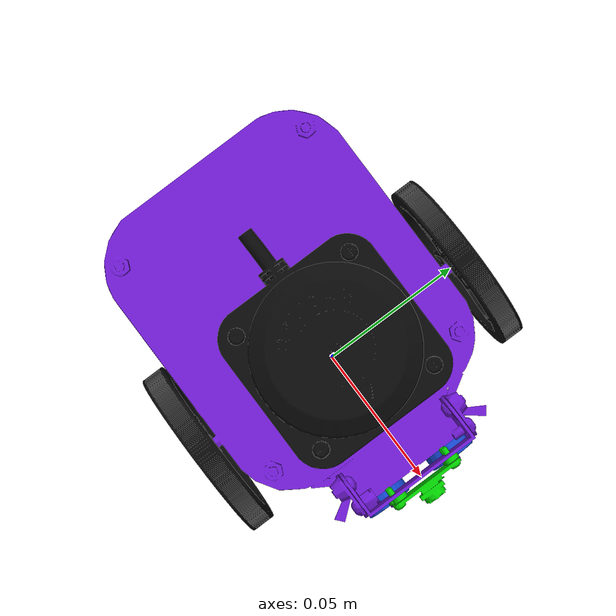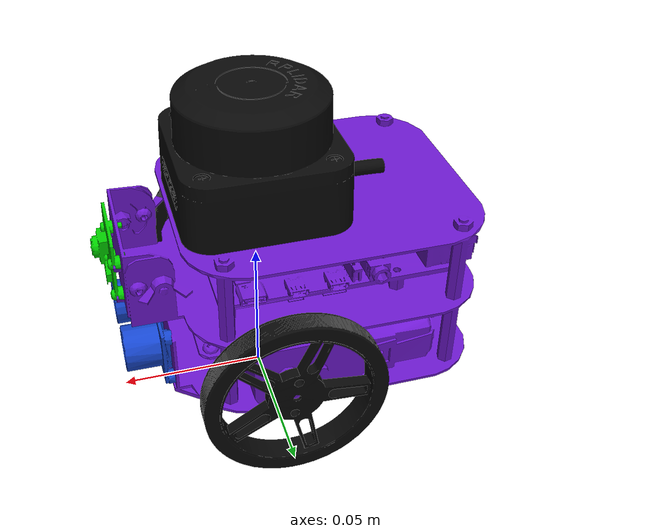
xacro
<?xml version="1.0"?>
<robot name="my_mobile" xmlns:xacro="http://www.ros.org/wiki/xacro">

    <xacro:property name="wheel_separation" value="0.1"/>
    <xacro:property name="wheel_diameter" value="0.06"/>

    <link name="base_footprint"/>

    <joint name="base_link_fixed_joint" type="fixed">
        <parent link="base_footprint"/>
        <child link="base_link"/>
        <origin xyz="0 0 ${wheel_diameter/2}" rpy="0 0 0"/>
    </joint>

	<link name="base_link">
		<visual>
            <origin xyz="0 0 0" rpy="0 0 0"/>
            <geometry>
                <mesh filename="file://$(find pinky_description)/meshes/visual/base_link.dae" scale="1 1 1"/>
            </geometry>
        </visual>
        <collision>
            <origin xyz="0 0 0" rpy="0 0 0"/>
            <geometry>
                <mesh filename="file://$(find pinky_description)/meshes/collision/base_link.stl" scale="1 1 1"/>
            </geometry>
        </collision>
        <inertial>
            <origin xyz="-0.02 0 0.028" rpy="0 0 0"/>
            <mass value="2.0"/>
            <inertia ixx="0.01" ixy="0" ixz="0" iyy="0.01" iyz="0" izz="0.01"/>
        </inertial>
	</link>

    <joint name="left_wheel_joint" type="continuous">
        <parent link="base_link"/>
        <child link="left_wheel"/>
        <origin xyz="0 ${wheel_separation/2} 0" rpy="-${pi/2} 0 0"/>
        <axis xyz="0 0 1"/>
    </joint>

    <link name="left_wheel">
        <visual>
            <origin xyz="0 0 0" rpy="0 0 0"/>
            <geometry>
                <mesh filename="file://$(find pinky_description)/meshes/visual/wheel.dae" scale="1 1 1"/>
            </geometry>
        </visual>
        <collision>
            <origin xyz="0 0 0" rpy="0 0 0"/>
            <geometry>
                <mesh filename="file://$(find pinky_description)/meshes/collision/wheel.stl" scale="1 1 1"/>
            </geometry>
        </collision>
        <inertial>
            <origin xyz="0 0 0" rpy="0 0 0"/>
            <mass value="0.2"/>
            <inertia ixx="0.1" ixy="0" ixz="0" iyy="0.1" iyz="0" izz="0.1"/>
        </inertial>
    </link>

    <joint name="right_wheel_joint" type="continuous">
        <parent link="base_link"/>
        <child link="right_wheel"/>
        <origin xyz="0 ${-1 * wheel_separation/2} 0" rpy="${pi/2} 0 0"/>
        <axis xyz="0 0 -1"/>
    </joint>

    <link name="right_wheel">
        <visual>
            <origin xyz="0 0 0" rpy="0 0 0"/>
            <geometry>
                <mesh filename="file://$(find pinky_description)/meshes/visual/wheel.dae" scale="1 1 1"/>
            </geometry>
        </visual>
        <collision>
            <origin xyz="0 0 0" rpy="0 0 0"/>
            <geometry>
                <mesh filename="file://$(find pinky_description)/meshes/collision/wheel.stl" scale="1 1 1"/>
            </geometry>
        </collision>
        <inertial>
            <origin xyz="0 0 0" rpy="0 0 0"/>
            <mass value="0.2"/>
            <inertia ixx="0.1" ixy="0" ixz="0" iyy="0.1" iyz="0" izz="0.1"/>
        </inertial>
    </link>

    <link name="ul_sensor_mount">
        <visual>
            <origin xyz="0 0 0" rpy="0 0 0"/>
            <geometry>
                <mesh filename="file://$(find pinky_description)/meshes/visual/ul_sensor.dae" scale="1 1 1"/>
            </geometry>
        </visual>
        <collision>
            <origin xyz="0 0 0" rpy="0 0 0"/>
            <geometry>
                <mesh filename="file://$(find pinky_description)/meshes/collision/ul_sensor.stl" scale="1 1 1"/>
            </geometry>
        </collision>
        <inertial>
            <origin xyz="0.005 0 0.013" rpy="0 0 0"/>
            <mass value="0.050000"/>
            <inertia ixx="0.000005" ixy="0" ixz="-0.000001" iyy="0.000004" iyz="0" izz="0.000003"/>
        </inertial>
    </link>

    <joint name="ul_sensor_mount_fixed_joint" type="fixed">
        <parent link="base_link"/>
        <child link="ul_sensor_mount"/>
        <origin xyz="0.038 -0.002 -0.0035" rpy="0 0 0"/>
    </joint>

    <link name="ul_sensor_link"/>

    <joint name="ul_sensor_link_fixed_joint" type="fixed">
        <parent link="ul_sensor_mount"/>
        <child link="ul_sensor_link"/>
        <origin xyz="0.01 0 0" rpy="0 0 0"/>
    </joint>

    <link name="front_camera_mount">
        <visual>
            <origin xyz="0 0 0" rpy="0 0 0"/>
            <geometry>
                <mesh filename="file://$(find pinky_description)/meshes/visual/camera.dae" scale="1 1 1"/>
            </geometry>
        </visual>
        <collision>
            <origin xyz="0 0 0" rpy="0 0 0"/>
            <geometry>
                <mesh filename="file://$(find pinky_description)/meshes/collision/camera.stl" scale="1 1 1"/>
            </geometry>
        </collision>
        <inertial>
            <origin xyz="0.005 0 0.013" rpy="0 0 0"/>
            <mass value="0.050000"/>
            <inertia ixx="0.000005" ixy="0" ixz="-0.000001" iyy="0.000004" iyz="0" izz="0.000003"/>
        </inertial>
    </link>

    <joint name="front_camera_mount_fixed_joint" type="fixed">
        <parent link="base_link"/>
        <child link="front_camera_mount"/>
        <origin xyz="0.05 -0.001 0.028" rpy="0 0 0"/>
    </joint>

    <link name="camera_link"/>

    <joint name="camera_link_fixed_joint" type="fixed">
        <parent link="front_camera_mount"/>
        <child link="camera_link"/>
        <origin xyz="0.001 0 0.003" rpy="0 ${pi/2} 0"/>
    </joint>

    <link name="rplidar_lidar_mount">
        <visual>
            <origin xyz="0 0 0" rpy="0 0 0"/>
            <geometry>
                <mesh filename="file://$(find pinky_description)/meshes/visual/lidar.dae" scale="1 1 1"/>
            </geometry>
        </visual>
        <collision>
            <origin xyz="0 0 0" rpy="0 0 0"/>
            <geometry>
                <mesh filename="file://$(find pinky_description)/meshes/collision/lidar.stl" scale="1 1 1"/>
            </geometry>
        </collision>
        <inertial>
            <origin xyz="0.007 0 0.025" rpy="0 0 0"/>
            <mass value="0.110"/>
            <inertia ixx="0.000058" ixy="0" ixz="0.000005" iyy="0.000099" iyz="0" izz="0.000103"/>
        </inertial>
    </link>

    <joint name="lidar_mount_fixed_joint" type="fixed">
        <parent link="base_link"/>
        <child link="rplidar_lidar_mount"/>
        <origin xyz="0 0 0.042" rpy="0 0 0"/>
    </joint>

    <link name="laser_link"/>

    <joint name="laser_link_fixed_joint" type="fixed">
        <parent link="rplidar_lidar_mount"/>
        <child link="laser_link"/>
        <origin xyz="0.0 0 0.03" rpy="0 0 ${pi}"/>
    </joint>
</robot>
